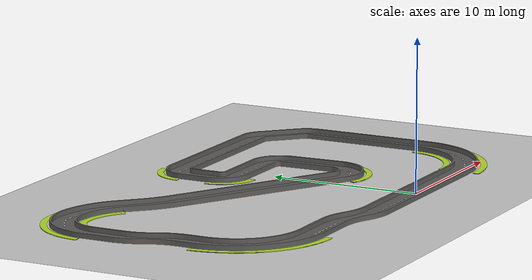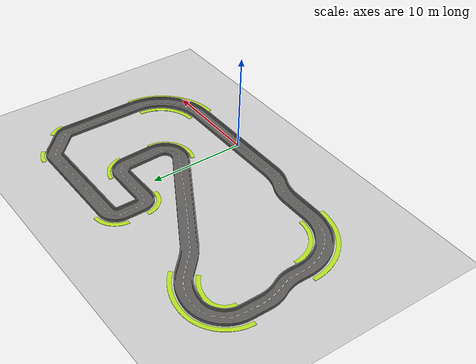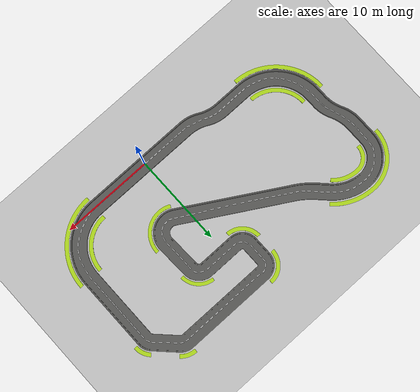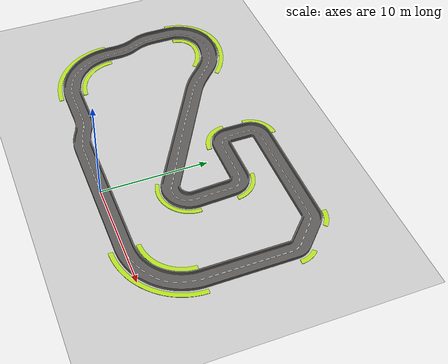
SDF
<?xml version="1.0"?>
<sdf version="1.4">
  <world name="default">

    <scene>
      <shadows>1</shadows>
      <grid>0</grid>
      <origin_visual>0</origin_visual>
      <sky/>
      <ambient>0.4 0.4 0.4 1</ambient>
      <background>0.7 0.7 0.7 1</background>
    </scene>

    <!-- A global light source -->
    <include>
      <uri>model://sun</uri>
    </include>

    <!-- A ground plane -->
    <include>
      <uri>model://ground_plane</uri>
    </include>

    <!-- Load world -->
    <include>
      <pose> 0 0 0.1 0 0 0 </pose>
      <uri>model://turtlebot3_racemap/track</uri>
    </include>

    <include>
      <pose> 0 0 0.039 0 0 0 </pose>
      <uri>model://turtlebot3_racemap/rine</uri>
    </include>

    <include>
     <uri>model://asphalt_plane</uri>
     <name>asphalt_plane_0_0</name>
     <pose>10 20 -0.03   0 0 0</pose>
    </include>

    <include>
     <uri>model://asphalt_plane</uri>
     <name>asphalt_plane_0_1</name>
     <pose>10 0 -0.03   0 0 0</pose>
    </include>

    <include>
     <uri>model://asphalt_plane</uri>
     <name>asphalt_plane_0_2</name>
     <pose>-10 20 -0.03   0 0 0</pose>
    </include>

    <include>
     <uri>model://asphalt_plane</uri>
     <name>asphalt_plane_0_3</name>
     <pose>-10 0 -0.03   0 0 0</pose>
    </include>

    <physics type="ode">
      <real_time_update_rate>1000.0</real_time_update_rate>
      <max_step_size>0.001</max_step_size>
      <real_time_factor>1</real_time_factor>
      <ode>
        <solver>
          <type>quick</type>
          <iters>150</iters>
          <precon_iters>0</precon_iters>
          <sor>1.400000</sor>
          <use_dynamic_moi_rescaling>1</use_dynamic_moi_rescaling>
        </solver>
        <constraints>
          <cfm>0.00001</cfm>
          <erp>0.2</erp>
          <contact_max_correcting_vel>2000.000000</contact_max_correcting_vel>
          <contact_surface_layer>0.01000</contact_surface_layer>
        </constraints>
      </ode>
    </physics>
  </world>
</sdf>

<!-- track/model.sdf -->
<sdf version='1.6'>
  <model name="track">
    <static>true</static>
    <link name="link">
      <collision name="collision">
        <geometry>
          <mesh>
            <uri>model://turtlebot3_racemap/track/meshes/RaceTrackV1.dae</uri>
          </mesh>
        </geometry>
      </collision>
      <visual name="visual">
        <geometry>
          <mesh>
            <uri>model://turtlebot3_racemap/track/meshes/RaceTrackV1.dae</uri>
          </mesh>
        </geometry>
      </visual>
    </link>
  </model>
</sdf>

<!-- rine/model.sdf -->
<sdf version='1.6'>
  <model name="rine">
    <static>true</static>
    <link name="link">

      <visual name="visual">
        <geometry>
          <mesh>
            <uri>model://turtlebot3_racemap/rine/meshes/rine.dae</uri>
          </mesh>
        </geometry>
      </visual>
    </link>
  </model>
</sdf>
